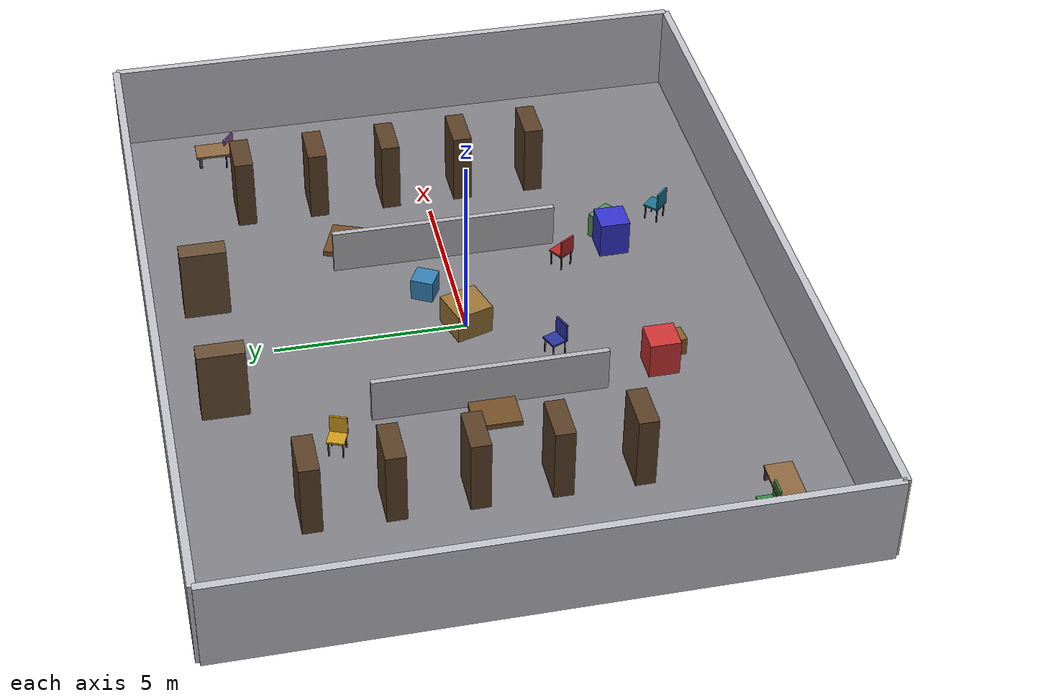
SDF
<?xml version="1.0"?>
<sdf version="1.6">
  <world name="warehouse_world">
    <physics name="default_physics" type="ode">
      <max_step_size>0.001</max_step_size>
      <real_time_factor>1.0</real_time_factor>
      <real_time_update_rate>1000</real_time_update_rate>
    </physics>

    <scene>
      <ambient>0.45 0.45 0.45 1</ambient>
      <background>0.65 0.65 0.7 1</background>
      <shadows>true</shadows>
    </scene>

    <light name="sun" type="directional">
      <cast_shadows>true</cast_shadows>
      <pose>0 0 12 0 0 0</pose>
      <diffuse>0.85 0.85 0.85 1</diffuse>
      <specular>0.2 0.2 0.2 1</specular>
      <direction>-0.4 0.2 -0.9</direction>
    </light>

    <!-- Floor -->
    <model name="warehouse_floor">
      <static>true</static>
      <link name="link">
        <collision name="collision">
          <geometry>
            <plane>
              <normal>0 0 1</normal>
              <size>20 16</size>
            </plane>
          </geometry>
        </collision>
        <visual name="visual">
          <geometry>
            <plane>
              <normal>0 0 1</normal>
              <size>20 16</size>
            </plane>
          </geometry>
          <material>
            <ambient>0.5 0.5 0.52 1</ambient>
            <diffuse>0.5 0.5 0.52 1</diffuse>
          </material>
        </visual>
      </link>
    </model>

    <!-- Perimeter walls -->
    <model name="north_wall">
      <static>true</static>
      <pose>0 8 1.2 0 0 0</pose>
      <link name="link">
        <collision name="collision"><geometry><box><size>20 0.2 2.4</size></box></geometry></collision>
        <visual name="visual"><geometry><box><size>20 0.2 2.4</size></box></geometry>
          <material><ambient>0.75 0.75 0.78 1</ambient><diffuse>0.75 0.75 0.78 1</diffuse></material>
        </visual>
      </link>
    </model>
    <model name="south_wall">
      <static>true</static>
      <pose>0 -8 1.2 0 0 0</pose>
      <link name="link">
        <collision name="collision"><geometry><box><size>20 0.2 2.4</size></box></geometry></collision>
        <visual name="visual"><geometry><box><size>20 0.2 2.4</size></box></geometry>
          <material><ambient>0.75 0.75 0.78 1</ambient><diffuse>0.75 0.75 0.78 1</diffuse></material>
        </visual>
      </link>
    </model>
    <model name="east_wall">
      <static>true</static>
      <pose>10 0 1.2 0 0 0</pose>
      <link name="link">
        <collision name="collision"><geometry><box><size>0.2 16 2.4</size></box></geometry></collision>
        <visual name="visual"><geometry><box><size>0.2 16 2.4</size></box></geometry>
          <material><ambient>0.75 0.75 0.78 1</ambient><diffuse>0.75 0.75 0.78 1</diffuse></material>
        </visual>
      </link>
    </model>
    <model name="west_wall">
      <static>true</static>
      <pose>-10 0 1.2 0 0 0</pose>
      <link name="link">
        <collision name="collision"><geometry><box><size>0.2 16 2.4</size></box></geometry></collision>
        <visual name="visual"><geometry><box><size>0.2 16 2.4</size></box></geometry>
          <material><ambient>0.75 0.75 0.78 1</ambient><diffuse>0.75 0.75 0.78 1</diffuse></material>
        </visual>
      </link>
    </model>

    <!-- Interior aisle dividers (short walls) -->
    <model name="aisle_divider_1">
      <static>true</static>
      <pose>-3 0 0.6 0 0 0</pose>
      <link name="link">
        <collision name="collision"><geometry><box><size>0.15 6 1.2</size></box></geometry></collision>
        <visual name="visual"><geometry><box><size>0.15 6 1.2</size></box></geometry>
          <material><ambient>0.7 0.7 0.72 1</ambient><diffuse>0.7 0.7 0.72 1</diffuse></material>
        </visual>
      </link>
    </model>
    <model name="aisle_divider_2">
      <static>true</static>
      <pose>3 0 0.6 0 0 0</pose>
      <link name="link">
        <collision name="collision"><geometry><box><size>0.15 6 1.2</size></box></geometry></collision>
        <visual name="visual"><geometry><box><size>0.15 6 1.2</size></box></geometry>
          <material><ambient>0.7 0.7 0.72 1</ambient><diffuse>0.7 0.7 0.72 1</diffuse></material>
        </visual>
      </link>
    </model>

    <!-- Obstacles near spawn for immediate mapping feedback -->
    <model name="spawn_obstacle_left">
      <static>true</static>
      <pose>-2.5 -4.5 0.5 0 0 0</pose>
      <link name="link">
        <collision name="collision"><geometry><box><size>0.8 0.8 1.0</size></box></geometry></collision>
        <visual name="visual"><geometry><box><size>0.8 0.8 1.0</size></box></geometry>
          <material><ambient>0.8 0.2 0.2 1</ambient><diffuse>0.8 0.2 0.2 1</diffuse></material>
        </visual>
      </link>
    </model>
    <model name="spawn_obstacle_right">
      <static>true</static>
      <pose>2.5 -4.5 0.5 0 0 0</pose>
      <link name="link">
        <collision name="collision"><geometry><box><size>0.8 0.8 1.0</size></box></geometry></collision>
        <visual name="visual"><geometry><box><size>0.8 0.8 1.0</size></box></geometry>
          <material><ambient>0.2 0.2 0.8 1</ambient><diffuse>0.2 0.2 0.8 1</diffuse></material>
        </visual>
      </link>
    </model>

    <!-- Shelving row A (left side) -->
    <model name="shelf_a1"><static>true</static><pose>-6 5 1.0 0 0 0</pose>
      <link name="link"><collision name="collision"><geometry><box><size>1.2 0.5 2.0</size></box></geometry></collision>
        <visual name="visual"><geometry><box><size>1.2 0.5 2.0</size></box></geometry>
          <material><ambient>0.35 0.25 0.15 1</ambient><diffuse>0.35 0.25 0.15 1</diffuse></material>
        </visual></link></model>
    <model name="shelf_a2"><static>true</static><pose>-6 3 1.0 0 0 0</pose>
      <link name="link"><collision name="collision"><geometry><box><size>1.2 0.5 2.0</size></box></geometry></collision>
        <visual name="visual"><geometry><box><size>1.2 0.5 2.0</size></box></geometry>
          <material><ambient>0.35 0.25 0.15 1</ambient><diffuse>0.35 0.25 0.15 1</diffuse></material>
        </visual></link></model>
    <model name="shelf_a3"><static>true</static><pose>-6 1 1.0 0 0 0</pose>
      <link name="link"><collision name="collision"><geometry><box><size>1.2 0.5 2.0</size></box></geometry></collision>
        <visual name="visual"><geometry><box><size>1.2 0.5 2.0</size></box></geometry>
          <material><ambient>0.35 0.25 0.15 1</ambient><diffuse>0.35 0.25 0.15 1</diffuse></material>
        </visual></link></model>
    <model name="shelf_a4"><static>true</static><pose>-6 -1 1.0 0 0 0</pose>
      <link name="link"><collision name="collision"><geometry><box><size>1.2 0.5 2.0</size></box></geometry></collision>
        <visual name="visual"><geometry><box><size>1.2 0.5 2.0</size></box></geometry>
          <material><ambient>0.35 0.25 0.15 1</ambient><diffuse>0.35 0.25 0.15 1</diffuse></material>
        </visual></link></model>
    <model name="shelf_a5"><static>true</static><pose>-6 -3 1.0 0 0 0</pose>
      <link name="link"><collision name="collision"><geometry><box><size>1.2 0.5 2.0</size></box></geometry></collision>
        <visual name="visual"><geometry><box><size>1.2 0.5 2.0</size></box></geometry>
          <material><ambient>0.35 0.25 0.15 1</ambient><diffuse>0.35 0.25 0.15 1</diffuse></material>
        </visual></link></model>

    <!-- Shelving row B (right side) -->
    <model name="shelf_b1"><static>true</static><pose>6 5 1.0 0 0 0</pose>
      <link name="link"><collision name="collision"><geometry><box><size>1.2 0.5 2.0</size></box></geometry></collision>
        <visual name="visual"><geometry><box><size>1.2 0.5 2.0</size></box></geometry>
          <material><ambient>0.35 0.25 0.15 1</ambient><diffuse>0.35 0.25 0.15 1</diffuse></material>
        </visual></link></model>
    <model name="shelf_b2"><static>true</static><pose>6 3 1.0 0 0 0</pose>
      <link name="link"><collision name="collision"><geometry><box><size>1.2 0.5 2.0</size></box></geometry></collision>
        <visual name="visual"><geometry><box><size>1.2 0.5 2.0</size></box></geometry>
          <material><ambient>0.35 0.25 0.15 1</ambient><diffuse>0.35 0.25 0.15 1</diffuse></material>
        </visual></link></model>
    <model name="shelf_b3"><static>true</static><pose>6 1 1.0 0 0 0</pose>
      <link name="link"><collision name="collision"><geometry><box><size>1.2 0.5 2.0</size></box></geometry></collision>
        <visual name="visual"><geometry><box><size>1.2 0.5 2.0</size></box></geometry>
          <material><ambient>0.35 0.25 0.15 1</ambient><diffuse>0.35 0.25 0.15 1</diffuse></material>
        </visual></link></model>
    <model name="shelf_b4"><static>true</static><pose>6 -1 1.0 0 0 0</pose>
      <link name="link"><collision name="collision"><geometry><box><size>1.2 0.5 2.0</size></box></geometry></collision>
        <visual name="visual"><geometry><box><size>1.2 0.5 2.0</size></box></geometry>
          <material><ambient>0.35 0.25 0.15 1</ambient><diffuse>0.35 0.25 0.15 1</diffuse></material>
        </visual></link></model>
    <model name="shelf_b5"><static>true</static><pose>6 -3 1.0 0 0 0</pose>
      <link name="link"><collision name="collision"><geometry><box><size>1.2 0.5 2.0</size></box></geometry></collision>
        <visual name="visual"><geometry><box><size>1.2 0.5 2.0</size></box></geometry>
          <material><ambient>0.35 0.25 0.15 1</ambient><diffuse>0.35 0.25 0.15 1</diffuse></material>
        </visual></link></model>

    <!-- Shelving row C (back aisle) -->
    <model name="shelf_c1"><static>true</static><pose>-2 6.5 1.0 0 0 1.57</pose>
      <link name="link"><collision name="collision"><geometry><box><size>1.2 0.5 2.0</size></box></geometry></collision>
        <visual name="visual"><geometry><box><size>1.2 0.5 2.0</size></box></geometry>
          <material><ambient>0.4 0.3 0.2 1</ambient><diffuse>0.4 0.3 0.2 1</diffuse></material>
        </visual></link></model>
    <model name="shelf_c2"><static>true</static><pose>2 6.5 1.0 0 0 1.57</pose>
      <link name="link"><collision name="collision"><geometry><box><size>1.2 0.5 2.0</size></box></geometry></collision>
        <visual name="visual"><geometry><box><size>1.2 0.5 2.0</size></box></geometry>
          <material><ambient>0.4 0.3 0.2 1</ambient><diffuse>0.4 0.3 0.2 1</diffuse></material>
        </visual></link></model>

    <!-- Central obstacle cluster -->
    <model name="center_pallet_stack">
      <static>true</static>
      <pose>0 0 0.4 0 0 0.3</pose>
      <link name="link">
        <collision name="collision"><geometry><box><size>1.0 1.0 0.8</size></box></geometry></collision>
        <visual name="visual"><geometry><box><size>1.0 1.0 0.8</size></box></geometry>
          <material><ambient>0.6 0.45 0.2 1</ambient><diffuse>0.6 0.45 0.2 1</diffuse></material>
        </visual>
      </link>
    </model>
    <model name="center_crate">
      <static>true</static>
      <pose>1.5 0.8 0.3 0 0 -0.5</pose>
      <link name="link">
        <collision name="collision"><geometry><box><size>0.6 0.6 0.6</size></box></geometry></collision>
        <visual name="visual"><geometry><box><size>0.6 0.6 0.6</size></box></geometry>
          <material><ambient>0.2 0.5 0.7 1</ambient><diffuse>0.2 0.5 0.7 1</diffuse></material>
        </visual>
      </link>
    </model>

    <!-- Crates / pallets in aisles -->
    <model name="crate_1"><static>true</static><pose>-2 -5 0.25 0 0 0.1</pose>
      <link name="link"><collision name="collision"><geometry><box><size>0.5 0.5 0.5</size></box></geometry></collision>
        <visual name="visual"><geometry><box><size>0.5 0.5 0.5</size></box></geometry>
          <material><ambient>0.55 0.35 0.15 1</ambient><diffuse>0.55 0.35 0.15 1</diffuse></material>
        </visual></link></model>
    <model name="crate_2"><static>true</static><pose>3 -4.5 0.35 0 0 0.6</pose>
      <link name="link"><collision name="collision"><geometry><box><size>0.7 0.7 0.7</size></box></geometry></collision>
        <visual name="visual"><geometry><box><size>0.7 0.7 0.7</size></box></geometry>
          <material><ambient>0.3 0.55 0.3 1</ambient><diffuse>0.3 0.55 0.3 1</diffuse></material>
        </visual></link></model>
    <model name="pallet_1"><static>true</static><pose>-3.5 0 0.08 0 0 0</pose>
      <link name="link"><collision name="collision"><geometry><box><size>1.0 1.2 0.15</size></box></geometry></collision>
        <visual name="visual"><geometry><box><size>1.0 1.2 0.15</size></box></geometry>
          <material><ambient>0.45 0.3 0.15 1</ambient><diffuse>0.45 0.3 0.15 1</diffuse></material>
        </visual></link></model>
    <model name="pallet_2"><static>true</static><pose>4 2.5 0.08 0 0 1.2</pose>
      <link name="link"><collision name="collision"><geometry><box><size>1.0 1.2 0.15</size></box></geometry></collision>
        <visual name="visual"><geometry><box><size>1.0 1.2 0.15</size></box></geometry>
          <material><ambient>0.45 0.3 0.15 1</ambient><diffuse>0.45 0.3 0.15 1</diffuse></material>
        </visual></link></model>

    <!-- Tables / desks -->
    <model name="desk_1">
      <static>true</static>
      <pose>-8 -6 0.4 0 0 0</pose>
      <link name="link">
        <collision name="top_col"><pose>0 0 0.35 0 0 0</pose><geometry><box><size>1.4 0.7 0.06</size></box></geometry></collision>
        <collision name="leg1_col"><pose>0.6 0.3 0.175 0 0 0</pose><geometry><box><size>0.08 0.08 0.35</size></box></geometry></collision>
        <collision name="leg2_col"><pose>0.6 -0.3 0.175 0 0 0</pose><geometry><box><size>0.08 0.08 0.35</size></box></geometry></collision>
        <collision name="leg3_col"><pose>-0.6 0.3 0.175 0 0 0</pose><geometry><box><size>0.08 0.08 0.35</size></box></geometry></collision>
        <collision name="leg4_col"><pose>-0.6 -0.3 0.175 0 0 0</pose><geometry><box><size>0.08 0.08 0.35</size></box></geometry></collision>
        <visual name="top_vis"><pose>0 0 0.35 0 0 0</pose><geometry><box><size>1.4 0.7 0.06</size></box></geometry>
          <material><ambient>0.55 0.4 0.25 1</ambient><diffuse>0.55 0.4 0.25 1</diffuse></material></visual>
        <visual name="leg1_vis"><pose>0.6 0.3 0.175 0 0 0</pose><geometry><box><size>0.08 0.08 0.35</size></box></geometry>
          <material><ambient>0.3 0.3 0.3 1</ambient><diffuse>0.3 0.3 0.3 1</diffuse></material></visual>
        <visual name="leg2_vis"><pose>0.6 -0.3 0.175 0 0 0</pose><geometry><box><size>0.08 0.08 0.35</size></box></geometry>
          <material><ambient>0.3 0.3 0.3 1</ambient><diffuse>0.3 0.3 0.3 1</diffuse></material></visual>
        <visual name="leg3_vis"><pose>-0.6 0.3 0.175 0 0 0</pose><geometry><box><size>0.08 0.08 0.35</size></box></geometry>
          <material><ambient>0.3 0.3 0.3 1</ambient><diffuse>0.3 0.3 0.3 1</diffuse></material></visual>
        <visual name="leg4_vis"><pose>-0.6 -0.3 0.175 0 0 0</pose><geometry><box><size>0.08 0.08 0.35</size></box></geometry>
          <material><ambient>0.3 0.3 0.3 1</ambient><diffuse>0.3 0.3 0.3 1</diffuse></material></visual>
      </link>
    </model>
    <model name="desk_2">
      <static>true</static>
      <pose>8 5.5 0.4 0 0 1.57</pose>
      <link name="link">
        <collision name="top_col"><pose>0 0 0.35 0 0 0</pose><geometry><box><size>1.2 0.6 0.06</size></box></geometry></collision>
        <collision name="leg1_col"><pose>0.5 0.25 0.175 0 0 0</pose><geometry><box><size>0.08 0.08 0.35</size></box></geometry></collision>
        <collision name="leg2_col"><pose>0.5 -0.25 0.175 0 0 0</pose><geometry><box><size>0.08 0.08 0.35</size></box></geometry></collision>
        <collision name="leg3_col"><pose>-0.5 0.25 0.175 0 0 0</pose><geometry><box><size>0.08 0.08 0.35</size></box></geometry></collision>
        <collision name="leg4_col"><pose>-0.5 -0.25 0.175 0 0 0</pose><geometry><box><size>0.08 0.08 0.35</size></box></geometry></collision>
        <visual name="top_vis"><pose>0 0 0.35 0 0 0</pose><geometry><box><size>1.2 0.6 0.06</size></box></geometry>
          <material><ambient>0.55 0.4 0.25 1</ambient><diffuse>0.55 0.4 0.25 1</diffuse></material></visual>
        <visual name="leg1_vis"><pose>0.5 0.25 0.175 0 0 0</pose><geometry><box><size>0.08 0.08 0.35</size></box></geometry>
          <material><ambient>0.3 0.3 0.3 1</ambient><diffuse>0.3 0.3 0.3 1</diffuse></material></visual>
        <visual name="leg2_vis"><pose>0.5 -0.25 0.175 0 0 0</pose><geometry><box><size>0.08 0.08 0.35</size></box></geometry>
          <material><ambient>0.3 0.3 0.3 1</ambient><diffuse>0.3 0.3 0.3 1</diffuse></material></visual>
        <visual name="leg3_vis"><pose>-0.5 0.25 0.175 0 0 0</pose><geometry><box><size>0.08 0.08 0.35</size></box></geometry>
          <material><ambient>0.3 0.3 0.3 1</ambient><diffuse>0.3 0.3 0.3 1</diffuse></material></visual>
        <visual name="leg4_vis"><pose>-0.5 -0.25 0.175 0 0 0</pose><geometry><box><size>0.08 0.08 0.35</size></box></geometry>
          <material><ambient>0.3 0.3 0.3 1</ambient><diffuse>0.3 0.3 0.3 1</diffuse></material></visual>
      </link>
    </model>

    <!-- Chairs -->
    <model name="chair_1">
      <static>true</static>
      <pose>-1.5 -2 0 0 0 0.4</pose>
      <link name="link">
        <collision name="seat_col"><pose>0 0 0.45 0 0 0</pose><geometry><box><size>0.45 0.45 0.05</size></box></geometry></collision>
        <collision name="back_col"><pose>0 -0.2 0.7 0 0 0</pose><geometry><box><size>0.45 0.05 0.5</size></box></geometry></collision>
        <collision name="leg1_col"><pose>0.18 0.18 0.225 0 0 0</pose><geometry><cylinder><radius>0.02</radius><length>0.45</length></cylinder></geometry></collision>
        <collision name="leg2_col"><pose>0.18 -0.18 0.225 0 0 0</pose><geometry><cylinder><radius>0.02</radius><length>0.45</length></cylinder></geometry></collision>
        <collision name="leg3_col"><pose>-0.18 0.18 0.225 0 0 0</pose><geometry><cylinder><radius>0.02</radius><length>0.45</length></cylinder></geometry></collision>
        <collision name="leg4_col"><pose>-0.18 -0.18 0.225 0 0 0</pose><geometry><cylinder><radius>0.02</radius><length>0.45</length></cylinder></geometry></collision>
        <visual name="seat_vis"><pose>0 0 0.45 0 0 0</pose><geometry><box><size>0.45 0.45 0.05</size></box></geometry>
          <material><ambient>0.15 0.2 0.6 1</ambient><diffuse>0.15 0.2 0.6 1</diffuse></material></visual>
        <visual name="back_vis"><pose>0 -0.2 0.7 0 0 0</pose><geometry><box><size>0.45 0.05 0.5</size></box></geometry>
          <material><ambient>0.15 0.2 0.6 1</ambient><diffuse>0.15 0.2 0.6 1</diffuse></material></visual>
        <visual name="leg1_vis"><pose>0.18 0.18 0.225 0 0 0</pose><geometry><cylinder><radius>0.02</radius><length>0.45</length></cylinder></geometry>
          <material><ambient>0.2 0.2 0.2 1</ambient><diffuse>0.2 0.2 0.2 1</diffuse></material></visual>
        <visual name="leg2_vis"><pose>0.18 -0.18 0.225 0 0 0</pose><geometry><cylinder><radius>0.02</radius><length>0.45</length></cylinder></geometry>
          <material><ambient>0.2 0.2 0.2 1</ambient><diffuse>0.2 0.2 0.2 1</diffuse></material></visual>
        <visual name="leg3_vis"><pose>-0.18 0.18 0.225 0 0 0</pose><geometry><cylinder><radius>0.02</radius><length>0.45</length></cylinder></geometry>
          <material><ambient>0.2 0.2 0.2 1</ambient><diffuse>0.2 0.2 0.2 1</diffuse></material></visual>
        <visual name="leg4_vis"><pose>-0.18 -0.18 0.225 0 0 0</pose><geometry><cylinder><radius>0.02</radius><length>0.45</length></cylinder></geometry>
          <material><ambient>0.2 0.2 0.2 1</ambient><diffuse>0.2 0.2 0.2 1</diffuse></material></visual>
      </link>
    </model>
    <model name="chair_2">
      <static>true</static>
      <pose>2 -3 0 0 0 -1.0</pose>
      <link name="link">
        <collision name="seat_col"><pose>0 0 0.45 0 0 0</pose><geometry><box><size>0.45 0.45 0.05</size></box></geometry></collision>
        <collision name="back_col"><pose>0 -0.2 0.7 0 0 0</pose><geometry><box><size>0.45 0.05 0.5</size></box></geometry></collision>
        <collision name="leg1_col"><pose>0.18 0.18 0.225 0 0 0</pose><geometry><cylinder><radius>0.02</radius><length>0.45</length></cylinder></geometry></collision>
        <collision name="leg2_col"><pose>0.18 -0.18 0.225 0 0 0</pose><geometry><cylinder><radius>0.02</radius><length>0.45</length></cylinder></geometry></collision>
        <collision name="leg3_col"><pose>-0.18 0.18 0.225 0 0 0</pose><geometry><cylinder><radius>0.02</radius><length>0.45</length></cylinder></geometry></collision>
        <collision name="leg4_col"><pose>-0.18 -0.18 0.225 0 0 0</pose><geometry><cylinder><radius>0.02</radius><length>0.45</length></cylinder></geometry></collision>
        <visual name="seat_vis"><pose>0 0 0.45 0 0 0</pose><geometry><box><size>0.45 0.45 0.05</size></box></geometry>
          <material><ambient>0.7 0.15 0.15 1</ambient><diffuse>0.7 0.15 0.15 1</diffuse></material></visual>
        <visual name="back_vis"><pose>0 -0.2 0.7 0 0 0</pose><geometry><box><size>0.45 0.05 0.5</size></box></geometry>
          <material><ambient>0.7 0.15 0.15 1</ambient><diffuse>0.7 0.15 0.15 1</diffuse></material></visual>
        <visual name="leg1_vis"><pose>0.18 0.18 0.225 0 0 0</pose><geometry><cylinder><radius>0.02</radius><length>0.45</length></cylinder></geometry>
          <material><ambient>0.2 0.2 0.2 1</ambient><diffuse>0.2 0.2 0.2 1</diffuse></material></visual>
        <visual name="leg2_vis"><pose>0.18 -0.18 0.225 0 0 0</pose><geometry><cylinder><radius>0.02</radius><length>0.45</length></cylinder></geometry>
          <material><ambient>0.2 0.2 0.2 1</ambient><diffuse>0.2 0.2 0.2 1</diffuse></material></visual>
        <visual name="leg3_vis"><pose>-0.18 0.18 0.225 0 0 0</pose><geometry><cylinder><radius>0.02</radius><length>0.45</length></cylinder></geometry>
          <material><ambient>0.2 0.2 0.2 1</ambient><diffuse>0.2 0.2 0.2 1</diffuse></material></visual>
        <visual name="leg4_vis"><pose>-0.18 -0.18 0.225 0 0 0</pose><geometry><cylinder><radius>0.02</radius><length>0.45</length></cylinder></geometry>
          <material><ambient>0.2 0.2 0.2 1</ambient><diffuse>0.2 0.2 0.2 1</diffuse></material></visual>
      </link>
    </model>
    <model name="chair_3">
      <static>true</static>
      <pose>-8.2 -5.5 0 0 0 0</pose>
      <link name="link">
        <collision name="seat_col"><pose>0 0 0.45 0 0 0</pose><geometry><box><size>0.45 0.45 0.05</size></box></geometry></collision>
        <collision name="back_col"><pose>0 -0.2 0.7 0 0 0</pose><geometry><box><size>0.45 0.05 0.5</size></box></geometry></collision>
        <collision name="leg1_col"><pose>0.18 0.18 0.225 0 0 0</pose><geometry><cylinder><radius>0.02</radius><length>0.45</length></cylinder></geometry></collision>
        <collision name="leg2_col"><pose>0.18 -0.18 0.225 0 0 0</pose><geometry><cylinder><radius>0.02</radius><length>0.45</length></cylinder></geometry></collision>
        <collision name="leg3_col"><pose>-0.18 0.18 0.225 0 0 0</pose><geometry><cylinder><radius>0.02</radius><length>0.45</length></cylinder></geometry></collision>
        <collision name="leg4_col"><pose>-0.18 -0.18 0.225 0 0 0</pose><geometry><cylinder><radius>0.02</radius><length>0.45</length></cylinder></geometry></collision>
        <visual name="seat_vis"><pose>0 0 0.45 0 0 0</pose><geometry><box><size>0.45 0.45 0.05</size></box></geometry>
          <material><ambient>0.2 0.55 0.25 1</ambient><diffuse>0.2 0.55 0.25 1</diffuse></material></visual>
        <visual name="back_vis"><pose>0 -0.2 0.7 0 0 0</pose><geometry><box><size>0.45 0.05 0.5</size></box></geometry>
          <material><ambient>0.2 0.55 0.25 1</ambient><diffuse>0.2 0.55 0.25 1</diffuse></material></visual>
        <visual name="leg1_vis"><pose>0.18 0.18 0.225 0 0 0</pose><geometry><cylinder><radius>0.02</radius><length>0.45</length></cylinder></geometry>
          <material><ambient>0.2 0.2 0.2 1</ambient><diffuse>0.2 0.2 0.2 1</diffuse></material></visual>
        <visual name="leg2_vis"><pose>0.18 -0.18 0.225 0 0 0</pose><geometry><cylinder><radius>0.02</radius><length>0.45</length></cylinder></geometry>
          <material><ambient>0.2 0.2 0.2 1</ambient><diffuse>0.2 0.2 0.2 1</diffuse></material></visual>
        <visual name="leg3_vis"><pose>-0.18 0.18 0.225 0 0 0</pose><geometry><cylinder><radius>0.02</radius><length>0.45</length></cylinder></geometry>
          <material><ambient>0.2 0.2 0.2 1</ambient><diffuse>0.2 0.2 0.2 1</diffuse></material></visual>
        <visual name="leg4_vis"><pose>-0.18 -0.18 0.225 0 0 0</pose><geometry><cylinder><radius>0.02</radius><length>0.45</length></cylinder></geometry>
          <material><ambient>0.2 0.2 0.2 1</ambient><diffuse>0.2 0.2 0.2 1</diffuse></material></visual>
      </link>
    </model>
    <model name="chair_4">
      <static>true</static>
      <pose>8.2 5 0 0 0 2.5</pose>
      <link name="link">
        <collision name="seat_col"><pose>0 0 0.45 0 0 0</pose><geometry><box><size>0.45 0.45 0.05</size></box></geometry></collision>
        <collision name="back_col"><pose>0 -0.2 0.7 0 0 0</pose><geometry><box><size>0.45 0.05 0.5</size></box></geometry></collision>
        <collision name="leg1_col"><pose>0.18 0.18 0.225 0 0 0</pose><geometry><cylinder><radius>0.02</radius><length>0.45</length></cylinder></geometry></collision>
        <collision name="leg2_col"><pose>0.18 -0.18 0.225 0 0 0</pose><geometry><cylinder><radius>0.02</radius><length>0.45</length></cylinder></geometry></collision>
        <collision name="leg3_col"><pose>-0.18 0.18 0.225 0 0 0</pose><geometry><cylinder><radius>0.02</radius><length>0.45</length></cylinder></geometry></collision>
        <collision name="leg4_col"><pose>-0.18 -0.18 0.225 0 0 0</pose><geometry><cylinder><radius>0.02</radius><length>0.45</length></cylinder></geometry></collision>
        <visual name="seat_vis"><pose>0 0 0.45 0 0 0</pose><geometry><box><size>0.45 0.45 0.05</size></box></geometry>
          <material><ambient>0.55 0.35 0.6 1</ambient><diffuse>0.55 0.35 0.6 1</diffuse></material></visual>
        <visual name="back_vis"><pose>0 -0.2 0.7 0 0 0</pose><geometry><box><size>0.45 0.05 0.5</size></box></geometry>
          <material><ambient>0.55 0.35 0.6 1</ambient><diffuse>0.55 0.35 0.6 1</diffuse></material></visual>
        <visual name="leg1_vis"><pose>0.18 0.18 0.225 0 0 0</pose><geometry><cylinder><radius>0.02</radius><length>0.45</length></cylinder></geometry>
          <material><ambient>0.2 0.2 0.2 1</ambient><diffuse>0.2 0.2 0.2 1</diffuse></material></visual>
        <visual name="leg2_vis"><pose>0.18 -0.18 0.225 0 0 0</pose><geometry><cylinder><radius>0.02</radius><length>0.45</length></cylinder></geometry>
          <material><ambient>0.2 0.2 0.2 1</ambient><diffuse>0.2 0.2 0.2 1</diffuse></material></visual>
        <visual name="leg3_vis"><pose>-0.18 0.18 0.225 0 0 0</pose><geometry><cylinder><radius>0.02</radius><length>0.45</length></cylinder></geometry>
          <material><ambient>0.2 0.2 0.2 1</ambient><diffuse>0.2 0.2 0.2 1</diffuse></material></visual>
        <visual name="leg4_vis"><pose>-0.18 -0.18 0.225 0 0 0</pose><geometry><cylinder><radius>0.02</radius><length>0.45</length></cylinder></geometry>
          <material><ambient>0.2 0.2 0.2 1</ambient><diffuse>0.2 0.2 0.2 1</diffuse></material></visual>
      </link>
    </model>
    <model name="chair_5">
      <static>true</static>
      <pose>-4 4 0 0 0 1.2</pose>
      <link name="link">
        <collision name="seat_col"><pose>0 0 0.45 0 0 0</pose><geometry><box><size>0.45 0.45 0.05</size></box></geometry></collision>
        <collision name="back_col"><pose>0 -0.2 0.7 0 0 0</pose><geometry><box><size>0.45 0.05 0.5</size></box></geometry></collision>
        <collision name="leg1_col"><pose>0.18 0.18 0.225 0 0 0</pose><geometry><cylinder><radius>0.02</radius><length>0.45</length></cylinder></geometry></collision>
        <collision name="leg2_col"><pose>0.18 -0.18 0.225 0 0 0</pose><geometry><cylinder><radius>0.02</radius><length>0.45</length></cylinder></geometry></collision>
        <collision name="leg3_col"><pose>-0.18 0.18 0.225 0 0 0</pose><geometry><cylinder><radius>0.02</radius><length>0.45</length></cylinder></geometry></collision>
        <collision name="leg4_col"><pose>-0.18 -0.18 0.225 0 0 0</pose><geometry><cylinder><radius>0.02</radius><length>0.45</length></cylinder></geometry></collision>
        <visual name="seat_vis"><pose>0 0 0.45 0 0 0</pose><geometry><box><size>0.45 0.45 0.05</size></box></geometry>
          <material><ambient>0.8 0.6 0.1 1</ambient><diffuse>0.8 0.6 0.1 1</diffuse></material></visual>
        <visual name="back_vis"><pose>0 -0.2 0.7 0 0 0</pose><geometry><box><size>0.45 0.05 0.5</size></box></geometry>
          <material><ambient>0.8 0.6 0.1 1</ambient><diffuse>0.8 0.6 0.1 1</diffuse></material></visual>
        <visual name="leg1_vis"><pose>0.18 0.18 0.225 0 0 0</pose><geometry><cylinder><radius>0.02</radius><length>0.45</length></cylinder></geometry>
          <material><ambient>0.2 0.2 0.2 1</ambient><diffuse>0.2 0.2 0.2 1</diffuse></material></visual>
        <visual name="leg2_vis"><pose>0.18 -0.18 0.225 0 0 0</pose><geometry><cylinder><radius>0.02</radius><length>0.45</length></cylinder></geometry>
          <material><ambient>0.2 0.2 0.2 1</ambient><diffuse>0.2 0.2 0.2 1</diffuse></material></visual>
        <visual name="leg3_vis"><pose>-0.18 0.18 0.225 0 0 0</pose><geometry><cylinder><radius>0.02</radius><length>0.45</length></cylinder></geometry>
          <material><ambient>0.2 0.2 0.2 1</ambient><diffuse>0.2 0.2 0.2 1</diffuse></material></visual>
        <visual name="leg4_vis"><pose>-0.18 -0.18 0.225 0 0 0</pose><geometry><cylinder><radius>0.02</radius><length>0.45</length></cylinder></geometry>
          <material><ambient>0.2 0.2 0.2 1</ambient><diffuse>0.2 0.2 0.2 1</diffuse></material></visual>
      </link>
    </model>
    <model name="chair_6">
      <static>true</static>
      <pose>3.5 -6 0 0 0 -0.8</pose>
      <link name="link">
        <collision name="seat_col"><pose>0 0 0.45 0 0 0</pose><geometry><box><size>0.45 0.45 0.05</size></box></geometry></collision>
        <collision name="back_col"><pose>0 -0.2 0.7 0 0 0</pose><geometry><box><size>0.45 0.05 0.5</size></box></geometry></collision>
        <collision name="leg1_col"><pose>0.18 0.18 0.225 0 0 0</pose><geometry><cylinder><radius>0.02</radius><length>0.45</length></cylinder></geometry></collision>
        <collision name="leg2_col"><pose>0.18 -0.18 0.225 0 0 0</pose><geometry><cylinder><radius>0.02</radius><length>0.45</length></cylinder></geometry></collision>
        <collision name="leg3_col"><pose>-0.18 0.18 0.225 0 0 0</pose><geometry><cylinder><radius>0.02</radius><length>0.45</length></cylinder></geometry></collision>
        <collision name="leg4_col"><pose>-0.18 -0.18 0.225 0 0 0</pose><geometry><cylinder><radius>0.02</radius><length>0.45</length></cylinder></geometry></collision>
        <visual name="seat_vis"><pose>0 0 0.45 0 0 0</pose><geometry><box><size>0.45 0.45 0.05</size></box></geometry>
          <material><ambient>0.1 0.45 0.55 1</ambient><diffuse>0.1 0.45 0.55 1</diffuse></material></visual>
        <visual name="back_vis"><pose>0 -0.2 0.7 0 0 0</pose><geometry><box><size>0.45 0.05 0.5</size></box></geometry>
          <material><ambient>0.1 0.45 0.55 1</ambient><diffuse>0.1 0.45 0.55 1</diffuse></material></visual>
        <visual name="leg1_vis"><pose>0.18 0.18 0.225 0 0 0</pose><geometry><cylinder><radius>0.02</radius><length>0.45</length></cylinder></geometry>
          <material><ambient>0.2 0.2 0.2 1</ambient><diffuse>0.2 0.2 0.2 1</diffuse></material></visual>
        <visual name="leg2_vis"><pose>0.18 -0.18 0.225 0 0 0</pose><geometry><cylinder><radius>0.02</radius><length>0.45</length></cylinder></geometry>
          <material><ambient>0.2 0.2 0.2 1</ambient><diffuse>0.2 0.2 0.2 1</diffuse></material></visual>
        <visual name="leg3_vis"><pose>-0.18 0.18 0.225 0 0 0</pose><geometry><cylinder><radius>0.02</radius><length>0.45</length></cylinder></geometry>
          <material><ambient>0.2 0.2 0.2 1</ambient><diffuse>0.2 0.2 0.2 1</diffuse></material></visual>
        <visual name="leg4_vis"><pose>-0.18 -0.18 0.225 0 0 0</pose><geometry><cylinder><radius>0.02</radius><length>0.45</length></cylinder></geometry>
          <material><ambient>0.2 0.2 0.2 1</ambient><diffuse>0.2 0.2 0.2 1</diffuse></material></visual>
      </link>
    </model>

  </world>
</sdf>
